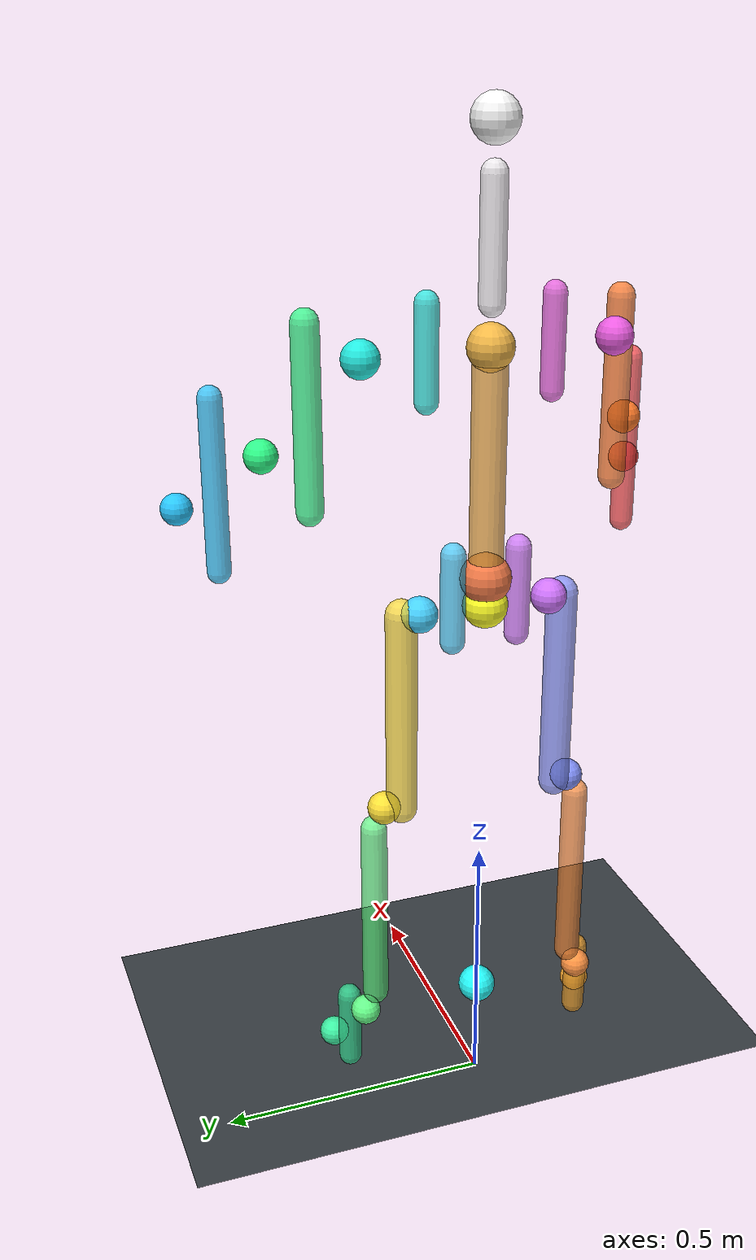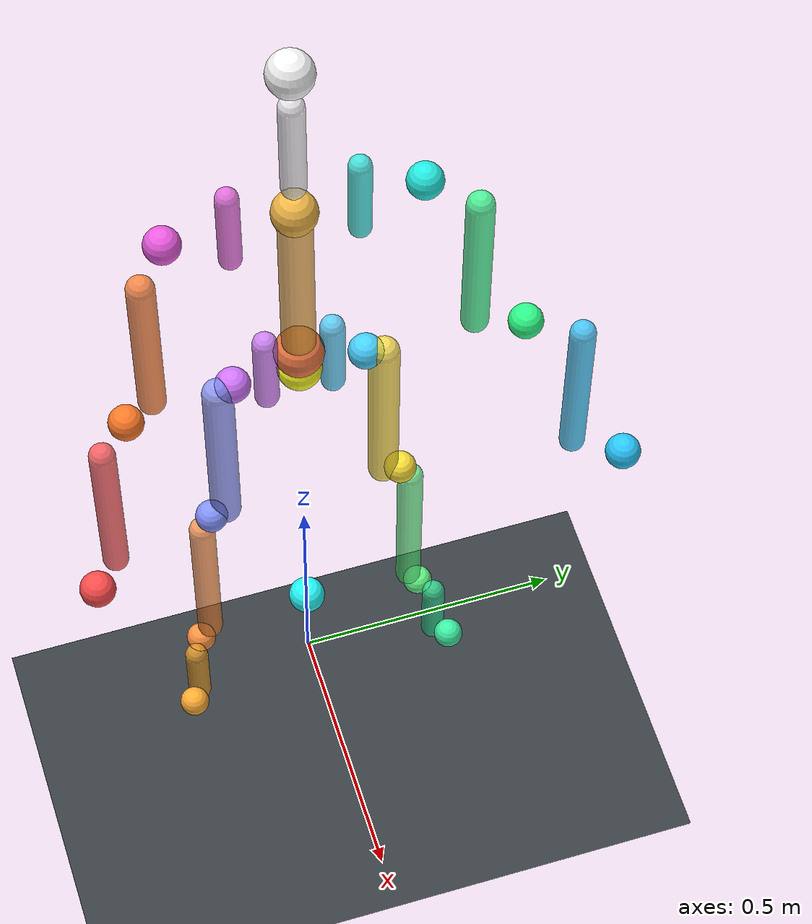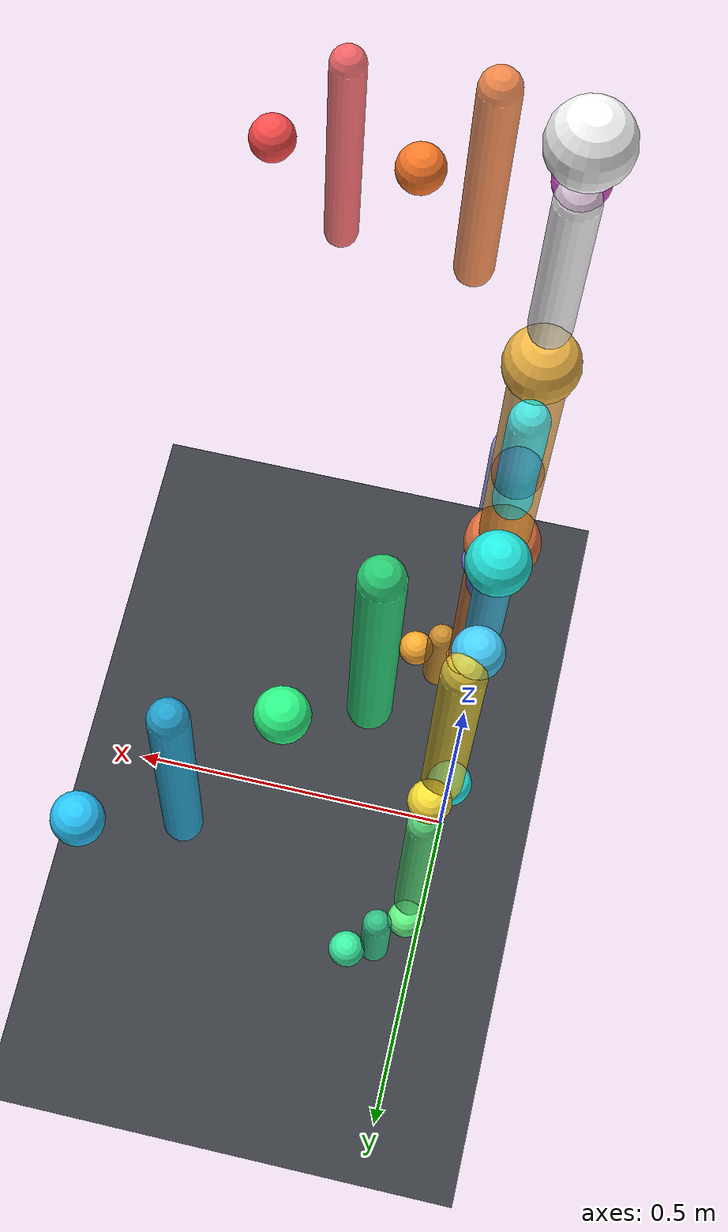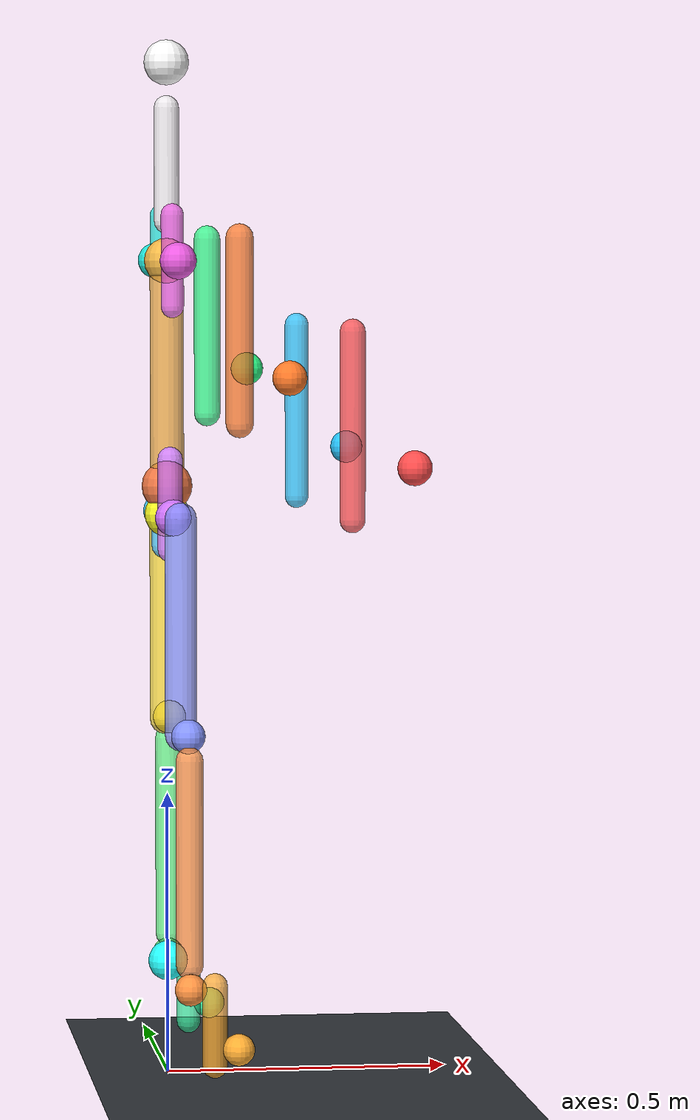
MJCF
<mujoco model="custom_pose_skeleton">
  <compiler angle="degree"/>
  <option timestep="0.01" gravity="0 0 0"/>
  <visual>
    <headlight diffuse="0.7 0.7 0.7" ambient="0.35 0.35 0.35" specular="0.15 0.15 0.15"/>
    <rgba haze="0.15 0.18 0.20 1"/>
  </visual>
  <asset>
    <texture name="grid" type="2d" builtin="checker" width="512" height="512"
      rgb1="0.15 0.17 0.19" rgb2="0.09 0.10 0.11"/>
    <material name="grid" texture="grid" texrepeat="8 8" reflectance="0.05"/>
  </asset>
  <worldbody>
    <light pos="0 0 5" dir="0 0 -1" directional="true"/>
    <geom name="floor" type="plane" size="5 5 0.1" material="grid" rgba="0.22 0.24 0.26 1"/>
    <camera name="overview" pos="2.8 -3.0 2.0" xyaxes="0.72 0.69 0 -0.24 0.25 0.94"/>

    <body name="joint_head" mocap="true" pos="0 0 1.8"><geom type="sphere" size="0.04" rgba="0.98 0.98 0.98 0.95"/></body>
    <body name="joint_thorax" mocap="true" pos="0 0 1.45"><geom type="sphere" size="0.04" rgba="0.95 0.72 0.28 0.95"/></body>
    <body name="joint_pelvis" mocap="true" pos="0 0 1.05"><geom type="sphere" size="0.045" rgba="0.95 0.48 0.28 0.95"/></body>
    <body name="joint_left_shoulder" mocap="true" pos="0 0.22 1.45"><geom type="sphere" size="0.032" rgba="0.14 0.92 0.88 0.95"/></body>
    <body name="joint_right_shoulder" mocap="true" pos="0 -0.22 1.45"><geom type="sphere" size="0.032" rgba="0.92 0.36 0.88 0.95"/></body>
    <body name="joint_left_elbow" mocap="true" pos="0.18 0.34 1.25"><geom type="sphere" size="0.03" rgba="0.18 1 0.54 0.95"/></body>
    <body name="joint_right_elbow" mocap="true" pos="0.18 -0.34 1.25"><geom type="sphere" size="0.03" rgba="1 0.48 0.16 0.95"/></body>
    <body name="joint_left_hand" mocap="true" pos="0.38 0.45 1.1"><geom type="sphere" size="0.03" rgba="0.16 0.78 1 0.95"/></body>
    <body name="joint_right_hand" mocap="true" pos="0.38 -0.45 1.1"><geom type="sphere" size="0.03" rgba="1 0.30 0.30 0.95"/></body>
    <body name="joint_left_hip" mocap="true" pos="0 0.12 1.0"><geom type="sphere" size="0.032" rgba="0.28 0.82 1 0.95"/></body>
    <body name="joint_right_hip" mocap="true" pos="0 -0.12 1.0"><geom type="sphere" size="0.032" rgba="0.82 0.46 1 0.95"/></body>
    <body name="joint_left_knee" mocap="true" pos="0.02 0.18 0.62"><geom type="sphere" size="0.03" rgba="1 0.88 0.22 0.95"/></body>
    <body name="joint_right_knee" mocap="true" pos="0.02 -0.18 0.62"><geom type="sphere" size="0.03" rgba="0.52 0.58 1 0.95"/></body>
    <body name="joint_left_ankle" mocap="true" pos="0.02 0.22 0.18"><geom type="sphere" size="0.028" rgba="0.40 1 0.54 0.95"/></body>
    <body name="joint_right_ankle" mocap="true" pos="0.02 -0.22 0.18"><geom type="sphere" size="0.028" rgba="1 0.58 0.26 0.95"/></body>
    <body name="joint_left_foot" mocap="true" pos="0.1 0.26 0.08"><geom type="sphere" size="0.028" rgba="0.24 0.94 0.64 0.95"/></body>
    <body name="joint_right_foot" mocap="true" pos="0.1 -0.26 0.08"><geom type="sphere" size="0.028" rgba="1 0.68 0.20 0.95"/></body>
    <body name="marker_com" mocap="true" pos="0 0 1.0"><geom type="sphere" size="0.04" rgba="1 1 0.15 0.95"/></body>
    <body name="marker_support_center" mocap="true" pos="0 0 0.2"><geom type="sphere" size="0.035" rgba="0.15 1 1 0.95"/></body>
    <body name="marker_tripod_center" mocap="true" pos="0 0 0.2"><geom type="sphere" size="0.032" rgba="1 0.32 0.9 0.95"/></body>

    <body name="segment_neck" mocap="true" pos="0 0 1.62"><geom name="segment_neck_geom" type="capsule" size="0.022 0.10" rgba="0.96 0.96 0.96 0.78"/></body>
    <body name="segment_spine" mocap="true" pos="0 0 1.25"><geom name="segment_spine_geom" type="capsule" size="0.03 0.18" rgba="0.95 0.68 0.26 0.78"/></body>
    <body name="segment_left_clavicle" mocap="true" pos="0 0.11 1.45"><geom name="segment_left_clavicle_geom" type="capsule" size="0.02 0.08" rgba="0.14 0.92 0.88 0.78"/></body>
    <body name="segment_right_clavicle" mocap="true" pos="0 -0.11 1.45"><geom name="segment_right_clavicle_geom" type="capsule" size="0.02 0.08" rgba="0.92 0.36 0.88 0.78"/></body>
    <body name="segment_left_upper_arm" mocap="true" pos="0.1 0.28 1.33"><geom name="segment_left_upper_arm_geom" type="capsule" size="0.024 0.16" rgba="0.18 1 0.54 0.78"/></body>
    <body name="segment_right_upper_arm" mocap="true" pos="0.1 -0.28 1.33"><geom name="segment_right_upper_arm_geom" type="capsule" size="0.024 0.16" rgba="1 0.48 0.16 0.78"/></body>
    <body name="segment_left_forearm" mocap="true" pos="0.28 0.40 1.17"><geom name="segment_left_forearm_geom" type="capsule" size="0.022 0.16" rgba="0.16 0.78 1 0.78"/></body>
    <body name="segment_right_forearm" mocap="true" pos="0.28 -0.40 1.17"><geom name="segment_right_forearm_geom" type="capsule" size="0.022 0.16" rgba="1 0.30 0.30 0.78"/></body>
    <body name="segment_left_hip_link" mocap="true" pos="0 0.06 1.02"><geom name="segment_left_hip_link_geom" type="capsule" size="0.022 0.08" rgba="0.28 0.82 1 0.78"/></body>
    <body name="segment_right_hip_link" mocap="true" pos="0 -0.06 1.02"><geom name="segment_right_hip_link_geom" type="capsule" size="0.022 0.08" rgba="0.82 0.46 1 0.78"/></body>
    <body name="segment_left_thigh" mocap="true" pos="0.01 0.15 0.81"><geom name="segment_left_thigh_geom" type="capsule" size="0.028 0.19" rgba="1 0.88 0.22 0.78"/></body>
    <body name="segment_right_thigh" mocap="true" pos="0.01 -0.15 0.81"><geom name="segment_right_thigh_geom" type="capsule" size="0.028 0.19" rgba="0.52 0.58 1 0.78"/></body>
    <body name="segment_left_shin" mocap="true" pos="0.02 0.20 0.40"><geom name="segment_left_shin_geom" type="capsule" size="0.024 0.18" rgba="0.40 1 0.54 0.78"/></body>
    <body name="segment_right_shin" mocap="true" pos="0.02 -0.20 0.40"><geom name="segment_right_shin_geom" type="capsule" size="0.024 0.18" rgba="1 0.58 0.26 0.78"/></body>
    <body name="segment_left_foot" mocap="true" pos="0.06 0.24 0.12"><geom name="segment_left_foot_geom" type="capsule" size="0.022 0.07" rgba="0.24 0.94 0.64 0.78"/></body>
    <body name="segment_right_foot" mocap="true" pos="0.06 -0.24 0.12"><geom name="segment_right_foot_geom" type="capsule" size="0.022 0.07" rgba="1 0.68 0.20 0.78"/></body>
  </worldbody>
</mujoco>
